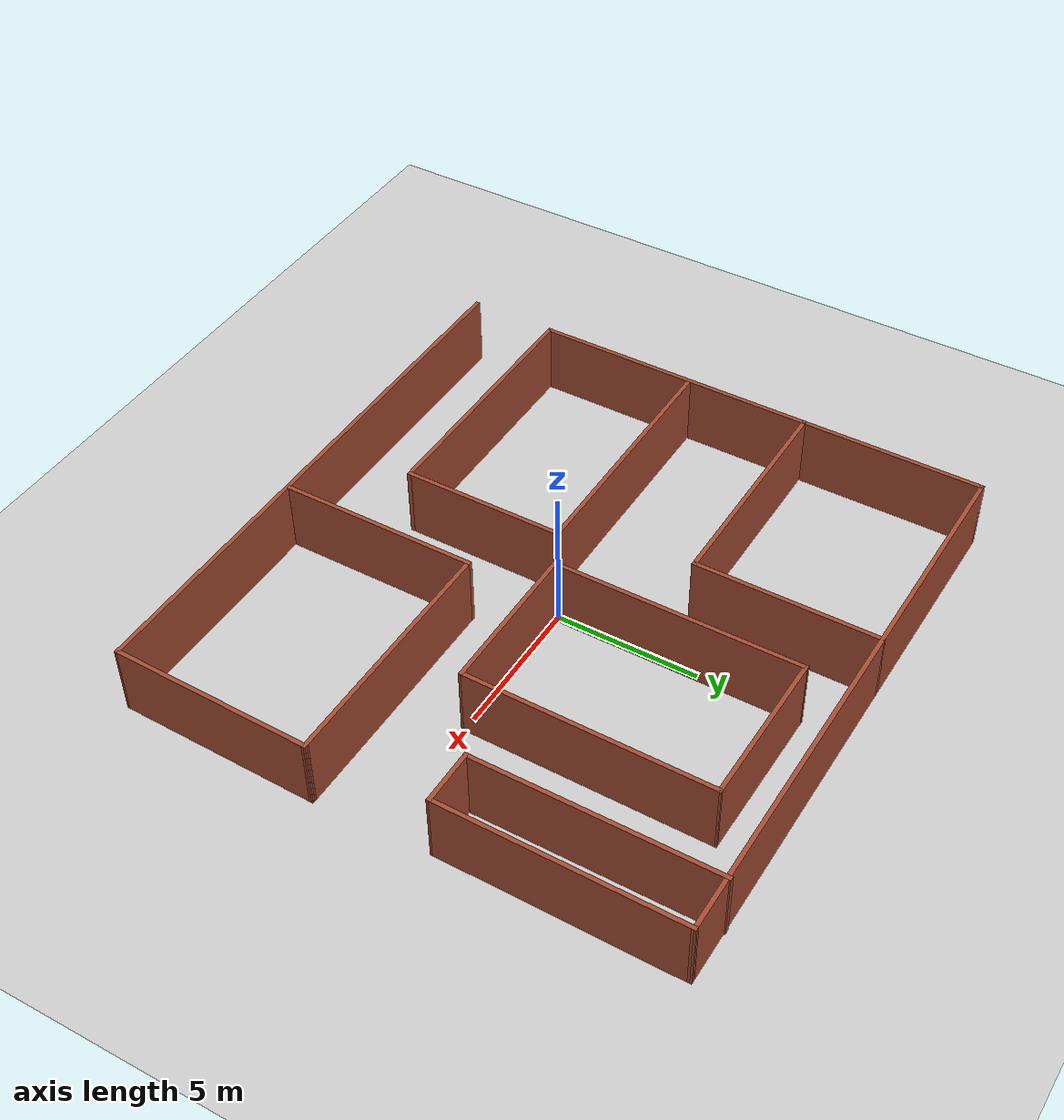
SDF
<sdf version="1.0">
 <world name="default">
  <light name="sun" type="directional">
   <pose>0 0 10 0 -0 0</pose>
   <diffuse>0.8 0.8 0.8 1</diffuse>
   <specular>0.1 0.1 0.1 1</specular>
   <attenuation>
    <range>1000</range>
    <constant>0.9</constant>
    <linear>0.01</linear>
    <quadratic>0.001</quadratic>
   </attenuation>
   <direction>-0.5 0.5 -1</direction>
  </light>
  <model name="ground_plane">
   <static>1</static>
   <link name="link">
    <collision name="collision">
     <geometry><plane><normal>0 0 1</normal><size>100 100</size></plane></geometry>
     <surface><friction><ode><mu>100</mu><mu2>50</mu2></ode></friction></surface>
    </collision>
    <visual name="visual">
     <cast_shadows>0</cast_shadows>
     <geometry><plane><normal>0 0 1</normal><size>100 100</size></plane></geometry>
     <material>
      <script><uri>file://media/materials/scripts/gazebo.material</uri><name>Gazebo/Grey</name></script>
     </material>
    </visual>
   </link>
  </model>
  <gravity>0 0 -9.8</gravity>
  <magnetic_field>6e-06 2.3e-05 -4.2e-05</magnetic_field>
  <atmosphere type="adiabatic"/>
  <physics name="default_physics" default="0" type="ode">
   <max_step_size>0.001</max_step_size>
   <real_time_factor>1</real_time_factor>
   <real_time_update_rate>1000</real_time_update_rate>
  </physics>
  <scene><ambient>0.4 0.4 0.4 1</ambient><background>0.7 0.7 0.7 1</background><shadows>1</shadows></scene>
  <spherical_coordinates>
   <surface_model>EARTH_WGS84</surface_model>
   <latitude_deg>0</latitude_deg>
   <longitude_deg>0</longitude_deg>
   <elevation>0</elevation>
   <heading_deg>0</heading_deg>
  </spherical_coordinates>
  <model name="Labyrinth_0">
   <pose>0.052862 0.379977 0 0 -0 0</pose>
   <link name="Wall_0">
    <collision name="Wall_0_Collision">
     <geometry><box><size>20 0.15 2.5</size></box></geometry>
     <pose>0 0 1.25 0 -0 0</pose>
    </collision>
    <visual name="Wall_0_Visual">
     <pose>0 0 1.25 0 -0 0</pose>
     <geometry><box><size>20 0.15 2.5</size></box></geometry>
     <material>
      <script><uri>file://media/materials/scripts/gazebo.material</uri><name>Gazebo/Bricks</name></script>
      <ambient>1 1 1 1</ambient>
     </material>
    </visual>
    <pose>-0.074972 9.65253 0 0 -0 0</pose>
   </link>
   <link name="Wall_10">
    <collision name="Wall_10_Collision">
     <geometry><box><size>9 0.15 2.5</size></box></geometry>
     <pose>0 0 1.25 0 -0 0</pose>
    </collision>
    <visual name="Wall_10_Visual">
     <pose>0 0 1.25 0 -0 0</pose>
     <geometry><box><size>9 0.15 2.5</size></box></geometry>
     <material>
      <script><uri>file://media/materials/scripts/gazebo.material</uri><name>Gazebo/Bricks</name></script>
      <ambient>1 1 1 1</ambient>
     </material>
    </visual>
    <pose>-5.57497 -1.04747 0 0 -0 0</pose>
   </link>
   <link name="Wall_11">
    <collision name="Wall_11_Collision">
     <geometry><box><size>5.75 0.15 2.5</size></box></geometry>
     <pose>0 0 1.25 0 -0 0</pose>
    </collision>
    <visual name="Wall_11_Visual">
     <pose>0 0 1.25 0 -0 0</pose>
     <geometry><box><size>5.75 0.15 2.5</size></box></geometry>
     <material>
      <script><uri>file://media/materials/scripts/gazebo.material</uri><name>Gazebo/Bricks</name></script>
      <ambient>1 1 1 1</ambient>
     </material>
    </visual>
    <pose>-1.14997 -3.84747 0 0 0 -1.5708</pose>
   </link>
   <link name="Wall_12">
    <collision name="Wall_12_Collision">
     <geometry><box><size>9 0.15 2.5</size></box></geometry>
     <pose>0 0 1.25 0 -0 0</pose>
    </collision>
    <visual name="Wall_12_Visual">
     <pose>0 0 1.25 0 -0 0</pose>
     <geometry><box><size>9 0.15 2.5</size></box></geometry>
     <material>
      <script><uri>file://media/materials/scripts/gazebo.material</uri><name>Gazebo/Bricks</name></script>
      <ambient>1 1 1 1</ambient>
     </material>
    </visual>
    <pose>-5.57497 -6.64747 0 0 -0 3.14159</pose>
   </link>
   <link name="Wall_13">
    <collision name="Wall_13_Collision">
     <geometry><box><size>5.75 0.15 2.5</size></box></geometry>
     <pose>0 0 1.25 0 -0 0</pose>
    </collision>
    <visual name="Wall_13_Visual">
     <pose>0 0 1.25 0 -0 0</pose>
     <geometry><box><size>5.75 0.15 2.5</size></box></geometry>
     <material>
      <script><uri>file://media/materials/scripts/gazebo.material</uri><name>Gazebo/Bricks</name></script>
      <ambient>1 1 1 1</ambient>
     </material>
    </visual>
    <pose>-9.99997 -3.84747 0 0 -0 1.5708</pose>
   </link>
   <link name="Wall_18">
    <collision name="Wall_18_Collision">
     <geometry><box><size>8.75 0.15 2.5</size></box></geometry>
     <pose>0 0 1.25 0 -0 0</pose>
    </collision>
    <visual name="Wall_18_Visual">
     <pose>0 0 1.25 0 -0 0</pose>
     <geometry><box><size>8.75 0.15 2.5</size></box></geometry>
     <material>
      <script><uri>file://media/materials/scripts/gazebo.material</uri><name>Gazebo/Bricks</name></script>
      <ambient>1 1 1 1</ambient>
     </material>
    </visual>
    <pose>0.049193 3.86376 0 0 0 -1.5708</pose>
   </link>
   <link name="Wall_19">
    <collision name="Wall_19_Collision">
     <geometry><box><size>5.5 0.15 2.5</size></box></geometry>
     <pose>0 0 1.25 0 -0 0</pose>
    </collision>
    <visual name="Wall_19_Visual">
     <pose>0 0 1.25 0 -0 0</pose>
     <geometry><box><size>5.5 0.15 2.5</size></box></geometry>
     <material>
      <script><uri>file://media/materials/scripts/gazebo.material</uri><name>Gazebo/Bricks</name></script>
      <ambient>1 1 1 1</ambient>
     </material>
    </visual>
    <pose>2.72419 -0.436235 0 0 -0 0</pose>
   </link>
   <link name="Wall_2">
    <collision name="Wall_2_Collision">
     <geometry><box><size>20 0.15 2.5</size></box></geometry>
     <pose>0 0 1.25 0 -0 0</pose>
    </collision>
    <visual name="Wall_2_Visual">
     <pose>0 0 1.25 0 -0 0</pose>
     <geometry><box><size>20 0.15 2.5</size></box></geometry>
     <material>
      <script><uri>file://media/materials/scripts/gazebo.material</uri><name>Gazebo/Bricks</name></script>
      <ambient>1 1 1 1</ambient>
     </material>
    </visual>
    <pose>-0.074972 -9.69747 0 0 -0 3.14159</pose>
   </link>
   <link name="Wall_23">
    <collision name="Wall_23_Collision">
     <geometry><box><size>8.7036 0.15 2.5</size></box></geometry>
     <pose>0 0 1.25 0 -0 0</pose>
    </collision>
    <visual name="Wall_23_Visual">
     <pose>0 0 1.25 0 -0 0</pose>
     <geometry><box><size>8.7036 0.15 2.5</size></box></geometry>
     <material>
      <script><uri>file://media/materials/scripts/gazebo.material</uri><name>Gazebo/Bricks</name></script>
      <ambient>1 1 1 1</ambient>
     </material>
    </visual>
    <pose>5.42258 3.8405 0 0 0 -1.57627</pose>
   </link>
   <link name="Wall_25">
    <collision name="Wall_25_Collision">
     <geometry><box><size>5.54697 0.15 2.5</size></box></geometry>
     <pose>0 0 1.25 0 -0 0</pose>
    </collision>
    <visual name="Wall_25_Visual">
     <pose>0 0 1.25 0 -0 0</pose>
     <geometry><box><size>5.54697 0.15 2.5</size></box></geometry>
     <material>
      <script><uri>file://media/materials/scripts/gazebo.material</uri><name>Gazebo/Bricks</name></script>
      <ambient>1 1 1 1</ambient>
     </material>
    </visual>
    <pose>2.74758 8.1405 0 0 0 -0.00862</pose>
   </link>
   <link name="Wall_27">
    <collision name="Wall_27_Collision">
     <geometry><box><size>8.5 0.15 2.5</size></box></geometry>
     <pose>0 0 1.25 0 -0 0</pose>
    </collision>
    <visual name="Wall_27_Visual">
     <pose>0 0 1.25 0 -0 0</pose>
     <geometry><box><size>8.5 0.15 2.5</size></box></geometry>
     <material>
      <script><uri>file://media/materials/scripts/gazebo.material</uri><name>Gazebo/Bricks</name></script>
      <ambient>1 1 1 1</ambient>
     </material>
    </visual>
    <pose>7.95826 5.52405 0 0 0 -1.5708</pose>
   </link>
   <link name="Wall_28">
    <collision name="Wall_28_Collision">
     <geometry><box><size>2 0.15 2.5</size></box></geometry>
     <pose>0 0 1.25 0 -0 0</pose>
    </collision>
    <visual name="Wall_28_Visual">
     <pose>0 0 1.25 0 -0 0</pose>
     <geometry><box><size>2 0.15 2.5</size></box></geometry>
     <material>
      <script><uri>file://media/materials/scripts/gazebo.material</uri><name>Gazebo/Bricks</name></script>
      <ambient>1 1 1 1</ambient>
     </material>
    </visual>
    <pose>8.88326 1.34905 0 0 -0 0</pose>
   </link>
   <link name="Wall_29">
    <collision name="Wall_29_Collision">
     <geometry><box><size>8.45358 0.15 2.5</size></box></geometry>
     <pose>0 0 1.25 0 -0 0</pose>
    </collision>
    <visual name="Wall_29_Visual">
     <pose>0 0 1.25 0 -0 0</pose>
     <geometry><box><size>8.45358 0.15 2.5</size></box></geometry>
     <material>
      <script><uri>file://media/materials/scripts/gazebo.material</uri><name>Gazebo/Bricks</name></script>
      <ambient>1 1 1 1</ambient>
     </material>
    </visual>
    <pose>9.82914 5.50079 0 0 -0 1.56577</pose>
   </link>
   <link name="Wall_31">
    <collision name="Wall_31_Collision">
     <geometry><box><size>7 0.15 2.5</size></box></geometry>
     <pose>0 0 1.25 0 -0 0</pose>
    </collision>
    <visual name="Wall_31_Visual">
     <pose>0 0 1.25 0 -0 0</pose>
     <geometry><box><size>7 0.15 2.5</size></box></geometry>
     <material>
      <script><uri>file://media/materials/scripts/gazebo.material</uri><name>Gazebo/Bricks</name></script>
      <ambient>1 1 1 1</ambient>
     </material>
    </visual>
    <pose>1.39839 -6.18337 0 0 -0 1.5708</pose>
   </link>
   <link name="Wall_32">
    <collision name="Wall_32_Collision">
     <geometry><box><size>8.75 0.15 2.5</size></box></geometry>
     <pose>0 0 1.25 0 -0 0</pose>
    </collision>
    <visual name="Wall_32_Visual">
     <pose>0 0 1.25 0 -0 0</pose>
     <geometry><box><size>8.75 0.15 2.5</size></box></geometry>
     <material>
      <script><uri>file://media/materials/scripts/gazebo.material</uri><name>Gazebo/Bricks</name></script>
      <ambient>1 1 1 1</ambient>
     </material>
    </visual>
    <pose>5.69839 -2.75837 0 0 -0 0</pose>
   </link>
   <link name="Wall_33">
    <collision name="Wall_33_Collision">
     <geometry><box><size>7.09068 0.15 2.5</size></box></geometry>
     <pose>0 0 1.25 0 -0 0</pose>
    </collision>
    <visual name="Wall_33_Visual">
     <pose>0 0 1.25 0 -0 0</pose>
     <geometry><box><size>7.09068 0.15 2.5</size></box></geometry>
     <material>
      <script><uri>file://media/materials/scripts/gazebo.material</uri><name>Gazebo/Bricks</name></script>
      <ambient>1 1 1 1</ambient>
     </material>
    </visual>
    <pose>9.92421 -6.22792 0 0 0 -1.59217</pose>
   </link>
   <link name="Wall_5">
    <collision name="Wall_5_Collision">
     <geometry><box><size>6.5 0.15 2.5</size></box></geometry>
     <pose>0 0 1.25 0 -0 0</pose>
    </collision>
    <visual name="Wall_5_Visual">
     <pose>0 0 1.25 0 -0 0</pose>
     <geometry><box><size>6.5 0.15 2.5</size></box></geometry>
     <material>
      <script><uri>file://media/materials/scripts/gazebo.material</uri><name>Gazebo/Bricks</name></script>
      <ambient>1 1 1 1</ambient>
     </material>
    </visual>
    <pose>-9.99997 6.47753 0 0 0 -1.5708</pose>
   </link>
   <link name="Wall_6">
    <collision name="Wall_6_Collision">
     <geometry><box><size>8 0.15 2.5</size></box></geometry>
     <pose>0 0 1.25 0 -0 0</pose>
    </collision>
    <visual name="Wall_6_Visual">
     <pose>0 0 1.25 0 -0 0</pose>
     <geometry><box><size>8 0.15 2.5</size></box></geometry>
     <material>
      <script><uri>file://media/materials/scripts/gazebo.material</uri><name>Gazebo/Bricks</name></script>
      <ambient>1 1 1 1</ambient>
     </material>
    </visual>
    <pose>-6.07497 3.30253 0 0 -0 0</pose>
   </link>
   <link name="Wall_7">
    <collision name="Wall_7_Collision">
     <geometry><box><size>6.5 0.15 2.5</size></box></geometry>
     <pose>0 0 1.25 0 -0 0</pose>
    </collision>
    <visual name="Wall_7_Visual">
     <pose>0 0 1.25 0 -0 0</pose>
     <geometry><box><size>6.5 0.15 2.5</size></box></geometry>
     <material>
      <script><uri>file://media/materials/scripts/gazebo.material</uri><name>Gazebo/Bricks</name></script>
      <ambient>1 1 1 1</ambient>
     </material>
    </visual>
    <pose>-2.14997 6.47753 0 0 -0 1.5708</pose>
   </link>
   <link name="Wall_9">
    <collision name="Wall_9_Collision">
     <geometry><box><size>4.5 0.15 2.5</size></box></geometry>
     <pose>0 0 1.25 0 -0 0</pose>
    </collision>
    <visual name="Wall_9_Visual">
     <pose>0 0 1.25 0 -0 0</pose>
     <geometry><box><size>4.5 0.15 2.5</size></box></geometry>
     <material>
      <script><uri>file://media/materials/scripts/gazebo.material</uri><name>Gazebo/Bricks</name></script>
      <ambient>1 1 1 1</ambient>
     </material>
    </visual>
    <pose>-9.99997 1.12753 0 0 0 -1.5708</pose>
   </link>
   <static>1</static>
  </model>
 </world>
</sdf>
